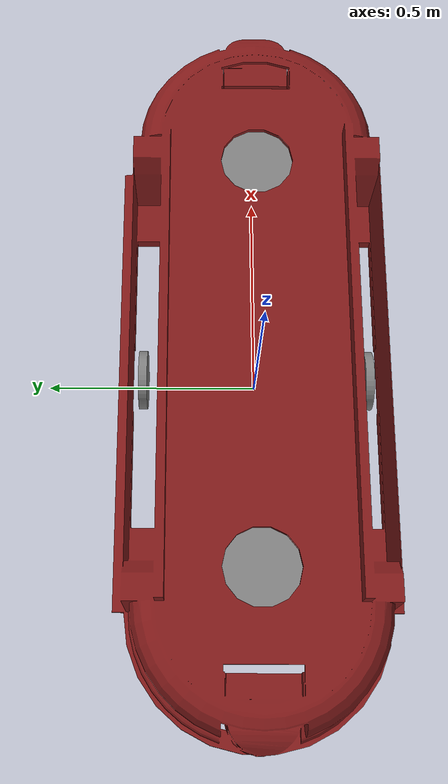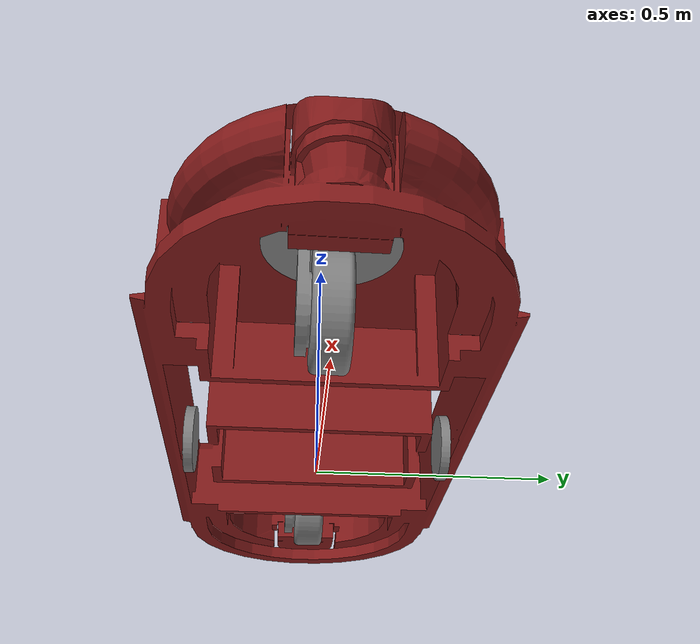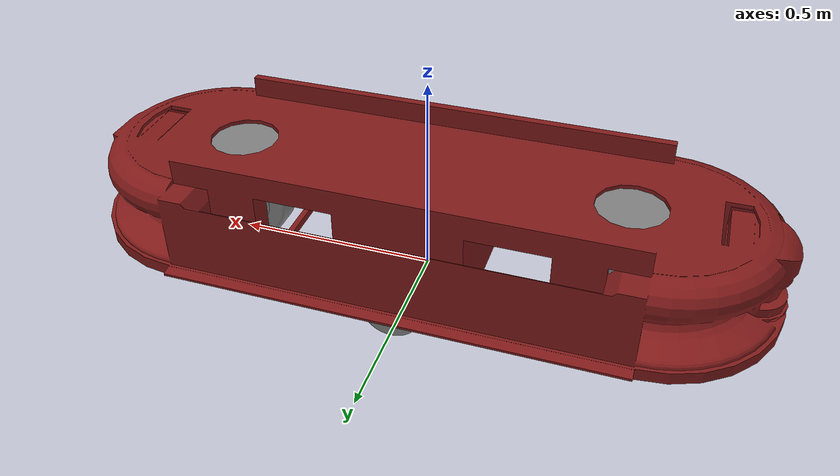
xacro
<?xml version="1.0" ?>
<robot name="$(arg robotName)"  xmlns:xacro="http://ros.org/wiki/xacro">

    <!-- Import all Gazebo-customization elements, including Gazebo colors -->
    <xacro:include filename="$(find dsr_description)/urdf/DSR.gazebo" />

    <!-- Xacro Properties -->
    <xacro:property name="PI" value="3.1415926535897931"/>
    <xacro:property name="wheel_offset_x" value="0.479" />
    <xacro:property name="wheel_offset_y" value="0.0" />
    <xacro:property name="wheel_offset_z" value="0.110" />
    <xacro:property name="wheel_joint_damping" value="1.0" />
    <xacro:property name="wheel_joint_friction" value="1.0" />
    <xacro:property name="wheel_joint_effort_limit" value="1000.0" />
    <xacro:property name="wheel_joint_velocity_limit" value="2000.0" />
    <xacro:property name="wheel_mechanical_reduction" value="1.0" />
    <xacro:property name="motor_wheel_offset_z" value="0.110" />
    <xacro:property name="side_wheel_offset_y" value="0.267" />
    <xacro:property name="side_wheel_offset_z" value="0.070" />
    <xacro:property name="side_wheel_joint_damping" value="1.0" />
    <xacro:property name="side_wheel_joint_friction" value="1.0" />
    <xacro:property name="steer_joint_damping" value="2.0" />
    <xacro:property name="steer_joint_friction" value="1.0" />
    <xacro:property name="steer_joint_effort_limit" value="100.0" />
    <xacro:property name="steer_joint_velocity_limit" value="100.0" />
    <xacro:property name="motor_wheel_mechanical_reduction" value="100.0" />

    <xacro:property name="base_link_mass" value="300.0" />
    <xacro:property name="base_link_x" value="2.0" />
    <xacro:property name="base_link_y" value="1.0" />
    <xacro:property name="base_link_z" value="0.5" />

    <xacro:property name="motor_mass" value="10.0" />
    <xacro:property name="motor_ixx" value="1.0" />
    <xacro:property name="motor_iyy" value="1.0" />
    <xacro:property name="motor_izz" value="1.0" />

    <xacro:property name="wheel_mass" value="10.0" />
    <xacro:property name="wheel_ixx" value="1.0" />
    <xacro:property name="wheel_iyy" value="1.0" />
    <xacro:property name="wheel_izz" value="1.0" />

    <xacro:property name="side_wheel_mass" value="1.250" />
    <xacro:property name="side_wheel_ixx" value="0.0109375" />
    <xacro:property name="side_wheel_iyy" value="0.021125" />
    <xacro:property name="side_wheel_izz" value="0.0109375" />

    <!-- Inertia Macros -->
    <xacro:macro name="Cylinder_Inertia" params ="m r h">
        <inertial>
            <mass value="${m}"/>
            <origin xyz="0 0 0" />
            <inertia ixx="${m*(3*r*r+h*h)/12}" ixy="0.0" ixz="0.0"
                     iyy="${m*(3*r*r+h*h)/12}" iyz= "0.0"
                     izz="${m*r*r/2}"/>
        </inertial>
    </xacro:macro>

    <xacro:macro name="Box_Inertia" params ="m x y z">
        <inertial>
            <mass value="${m}"/>
            <origin xyz="0 0 0" />
            <inertia ixx="${m*(y*y+z*z)/12}" ixy="0.0" ixz="0.0"
                     iyy="${m*(x*x+z*z)/12}" iyz="0.0"
                     izz="${m*(x*x+y*y)/12}"/>
        </inertial>
    </xacro:macro>

    <xacro:macro name="Motor_Inertia" params ="m ixx iyy izz">
        <inertial>
            <mass value="${m}"/>
            <origin xyz="0 0 0" />
            <inertia ixx="${ixx}" ixy="0.0" ixz="0.0"
                     iyy="${iyy}" iyz="0.0"
                     izz="${izz}"/>
        </inertial>
    </xacro:macro>

    <xacro:macro name="Wheel_Inertia" params ="m ixx iyy izz">
        <inertial>
            <mass value="${m}"/>
            <origin xyz="0 0 0" />
            <inertia ixx="${ixx}" ixy="0.0" ixz="0.0"
                     iyy="${iyy}" iyz="0.0"
                     izz="${izz}"/>
        </inertial>
    </xacro:macro>

    <!-- DSR Macro -->
    <xacro:macro name="DSR_BODY" params="prefix">

        <!-- Link: base_footprint -->
        <link name="${prefix}_base_footprint">
            <visual>
                <origin xyz="0 0 0" rpy="0 0 0" />
                <geometry>
                    <box size="0.001 0.001 0.001" />
                </geometry>
            </visual>
        </link>

        <!-- Joint: base_footprint & base_link -->
        <joint name="${prefix}_base_footprint_joint" type="fixed">
            <origin xyz="0 0 -0.005" rpy="0 0 0" />
            <parent link="${prefix}_base_footprint"/>
            <child link="${prefix}_base_link" />
        </joint>

        <!-- Link: base_link -->
        <link name="${prefix}_base_link">
            <xacro:Box_Inertia  m="${base_link_mass}"
                                x="${base_link_x}"
                                y="${base_link_y}"
                                z="${base_link_z}"/>
            <visual>
                <origin xyz="0 0 0" rpy="0 0 0" />
                <geometry>
                    <mesh filename="package://agvs_description/meshes/chassis_agvs.dae"/>
                </geometry>
                <material name="red">
                    <color rgba="0.5 0.1 0.1 1"/>
                </material>
            </visual>
            <collision>
                <origin xyz="0 0 0" rpy="0 0 0 " />
                <geometry>
                    <mesh filename="package://agvs_description/meshes/chassis_agvs.dae"/>
                </geometry>
            </collision>
        </link>

        <!-- Link: back motor link -->
        <link name="${prefix}_back_motor_link">
            <xacro:Box_Inertia  m="${motor_mass}"
                                x="${motor_ixx}"
                                y="${motor_iyy}"
                                z="${motor_izz}"/>
            <visual>
                <origin xyz="0 0 0" rpy="0 0 0" />
                <geometry>
                    <mesh filename="package://agvs_description/meshes/motor_wheel.dae" scale="1.0 1.0 1.0"/>
                </geometry>
                <material name="grey">
                    <color rgba="0.5 0.5 0.5 1"/>
                </material>
            </visual>
            <collision>
                <origin xyz="0 0 0" rpy="0 0 0" />
                <geometry>
                    <mesh filename="package://agvs_description/meshes/motor_wheel.dae" scale="1.0 1.0 1.0"/>
                </geometry>
            </collision>
        </link>

        <!-- Joint: base_link & back motor -->
        <joint name="${prefix}_joint_back_motor" type="continuous">
            <parent link="${prefix}_base_link"/>
            <child link="${prefix}_back_motor_link"/>
            <origin xyz="-${wheel_offset_x} ${wheel_offset_y} ${motor_wheel_offset_z}" rpy="0 0 0" />
            <axis xyz="0 0 1" rpy="0 0 0" />
            <limit effort="${steer_joint_effort_limit}" velocity="${steer_joint_velocity_limit}" lower="-1.5708" upper="1.5708"/>
            <joint_properties damping="${steer_joint_damping}" friction="{steer_joint_friction}"/>
        </joint>

        <!-- Transmission: back motor -->
        <transmission name="${prefix}_joint_bmw_trans">
            <type>transmission_interface/SimpleTransmission</type>
            <joint name="${prefix}_joint_back_motor">
                <hardwareInterface>hardware_interface/EffortJointInterface</hardwareInterface>
            </joint>
            <actuator name="${prefix}_joint_bmw_motor">
                <hardwareInterface>hardware_interface/EffortJointInterface</hardwareInterface>
                <mechanicalReduction>${motor_wheel_mechanical_reduction}</mechanicalReduction>
            </actuator>
        </transmission>

        <!-- Link: back wheel link -->
        <link name="${prefix}_back_wheel_link">
            <xacro:Wheel_Inertia    m="${wheel_mass}"
                                    ixx="${wheel_ixx}"
                                    iyy="${wheel_iyy}"
                                    izz="${wheel_izz}"/>
            <visual>
                <origin xyz="0 0 0" rpy="0 0 0" />
                <geometry>
                    <mesh filename="package://agvs_description/meshes/agvs_wheel.dae" scale="1.0 1.0 1.0"/>
                </geometry>
                <material name="grey">
                    <color rgba="0.5 0.5 0.5 1"/>
                </material>
            </visual>
            <collision>
                <origin xyz="0 0 0" rpy="0 0 0" />
                <geometry>
                    <mesh filename="package://agvs_description/meshes/agvs_wheel.dae" scale="1.0 1.0 1.0"/>
                </geometry>
            </collision>
        </link>

        <!-- Joint: back motor & back wheel link -->
        <joint name="${prefix}_joint_back_wheel" type="continuous">
            <parent link="${prefix}_back_motor_link"/>
            <child link="${prefix}_back_wheel_link"/>
            <origin xyz="0 0 0" rpy="0 0 0" />
            <axis xyz="0 1 0" rpy="0 0 0" />
            <limit effort="${wheel_joint_effort_limit}" velocity="${wheel_joint_velocity_limit}"/>
            <joint_properties damping="${wheel_joint_damping}" friction="{wheel_joint_friction}"/>
        </joint>

        <!-- Transmission: back wheel -->
        <transmission name="${prefix}_joint_bw_trans">
            <type>transmission_interface/SimpleTransmission</type>
            <joint name="${prefix}_joint_back_wheel">
                <hardwareInterface>hardware_interface/VelocityJointInterface</hardwareInterface>
            </joint>
            <actuator name="${prefix}_joint_bw_motor">
                <hardwareInterface>hardware_interface/VelocityJointInterface</hardwareInterface>
                <mechanicalReduction>${wheel_mechanical_reduction}</mechanicalReduction>
            </actuator>
        </transmission>

        <!-- Link: front motor link -->
        <link name="${prefix}_front_motor_link">
            <xacro:Box_Inertia  m="${motor_mass}"
                                x="${motor_ixx}"
                                y="${motor_iyy}"
                                z="${motor_izz}"/>
            <visual>
                <origin xyz="0 0 0" rpy="0 0 0" />
                <geometry>
                    <mesh filename="package://agvs_description/meshes/motor_wheel.dae" scale="1.0 1.0 1.0"/>
                </geometry>
                <material name="grey">
                    <color rgba="0.5 0.5 0.5 1"/>
                </material>
            </visual>
            <collision>
                <origin xyz="0 0 0" rpy="0 0 0" />
                <geometry>
                    <mesh filename="package://agvs_description/meshes/motor_wheel.dae" scale="1.0 1.0 1.0"/>
                </geometry>
            </collision>
        </link>

        <!-- Joint: base_link & front motor -->
        <joint name="${prefix}_joint_front_motor" type="continuous">
            <parent link="${prefix}_base_link"/>
            <child link="${prefix}_front_motor_link"/>
            <origin xyz="${wheel_offset_x} ${wheel_offset_y} ${motor_wheel_offset_z}" rpy="0 0 0" />
            <axis xyz="0 0 1" rpy="0 0 0" />
            <limit effort="${steer_joint_effort_limit}" velocity="${steer_joint_velocity_limit}" lower="-1.5708" upper="1.5708"/>
            <joint_properties damping="${steer_joint_damping}" friction="{steer_joint_friction}"/>
        </joint>

        <!-- Transmission: front motor -->
        <transmission name="${prefix}_joint_fmw_trans">
            <type>transmission_interface/SimpleTransmission</type>
            <joint name="${prefix}_joint_front_motor">
                <hardwareInterface>hardware_interface/EffortJointInterface</hardwareInterface>
            </joint>
            <actuator name="${prefix}_joint_fmw_motor">
                <hardwareInterface>hardware_interface/EffortJointInterface</hardwareInterface>
                <mechanicalReduction>${motor_wheel_mechanical_reduction}</mechanicalReduction>
            </actuator>
        </transmission>

        <!-- Link: front wheel link -->
        <link name="${prefix}_front_wheel_link">
            <xacro:Wheel_Inertia    m="${wheel_mass}"
                                    ixx="${wheel_ixx}"
                                    iyy="${wheel_iyy}"
                                    izz="${wheel_izz}"/>
            <visual>
                <origin xyz="0 0 0" rpy="0 0 0" />
                <geometry>
                    <mesh filename="package://agvs_description/meshes/agvs_wheel.dae" scale="1.0 1.0 1.0"/>
                </geometry>
                <material name="grey">
                    <color rgba="0.5 0.5 0.5 1"/>
                </material>
            </visual>
            <collision>
                <origin xyz="0 0 0" rpy="0 0 0" />
                <geometry>
                    <mesh filename="package://agvs_description/meshes/agvs_wheel.dae" scale="1.0 1.0 1.0"/>
                </geometry>
            </collision>
        </link>

        <!-- Joint: front motor & front wheel link -->
        <joint name="${prefix}_joint_front_wheel" type="continuous">
            <parent link="${prefix}_front_motor_link"/>
            <child link="${prefix}_front_wheel_link"/>
            <origin xyz="0 0 0" rpy="0 0 0" />
            <axis xyz="0 1 0" rpy="0 0 0" />
            <limit effort="${wheel_joint_effort_limit}" velocity="${wheel_joint_velocity_limit}"/>
            <joint_properties damping="${wheel_joint_damping}" friction="{wheel_joint_friction}"/>
        </joint>

        <!-- Transmission: back wheel -->
        <transmission name="${prefix}_joint_fw_trans">
            <type>transmission_interface/SimpleTransmission</type>
            <joint name="${prefix}_joint_front_wheel">
                <hardwareInterface>hardware_interface/VelocityJointInterface</hardwareInterface>
            </joint>
            <actuator name="${prefix}_joint_fw_motor">
                <hardwareInterface>hardware_interface/VelocityJointInterface</hardwareInterface>
                <mechanicalReduction>${wheel_mechanical_reduction}</mechanicalReduction>
            </actuator>
        </transmission>

        <!-- Link: left wheel link -->
        <link name="${prefix}_left_wheel_link">
            <xacro:Wheel_Inertia    m="${side_wheel_mass}"
                                    ixx="${side_wheel_ixx}"
                                    iyy="${side_wheel_iyy}"
                                    izz="${side_wheel_izz}"/>
            <visual>
                <origin xyz="0 0 0" rpy="0 0 0" />
                <geometry>
                    <mesh filename="package://agvs_description/meshes/side_wheel_agvs.dae" scale="1.0 1.0 1.0"/>
                </geometry>
                <material name="grey">
                    <color rgba="0.5 0.5 0.5 1"/>
                </material>
            </visual>

            <collision>
                <origin xyz="0 0 0" rpy="0 0 0" />
                <geometry>
                    <mesh filename="package://agvs_description/meshes/side_wheel_agvs.dae" scale="1.0 1.0 1.0"/>
                </geometry>
            </collision>
        </link>

        <!-- Joint: base link & left wheel link -->
        <joint name="${prefix}_joint_left_wheel" type="continuous">
            <parent link="${prefix}_base_link"/>
            <child link="${prefix}_left_wheel_link"/>
            <origin xyz="0 ${side_wheel_offset_y} ${side_wheel_offset_z}" rpy="0 0 0" />
            <axis xyz="0 1 0" rpy="0 0 0" />
            <limit effort="${wheel_joint_effort_limit}" velocity="${wheel_joint_velocity_limit}"/>
            <joint_properties damping="${side_wheel_joint_damping}" friction="{side_wheel_joint_friction}"/>
        </joint>

        <!-- Transmission: left wheel -->
        <transmission name="${prefix}_joint_lw_trans">
            <type>transmission_interface/SimpleTransmission</type>
            <joint name="${prefix}_joint_left_wheel">
                <hardwareInterface>hardware_interface/EffortJointInterface</hardwareInterface>
            </joint>
            <actuator name="${prefix}_joint_lw_motor">
                <hardwareInterface>hardware_interface/EffortJointInterface</hardwareInterface>
                <mechanicalReduction>${wheel_mechanical_reduction}</mechanicalReduction>
            </actuator>
        </transmission>

        <!-- Link: right wheel link -->
        <link name="${prefix}_right_wheel_link">
            <xacro:Wheel_Inertia    m="${side_wheel_mass}"
                                    ixx="${side_wheel_ixx}"
                                    iyy="${side_wheel_iyy}"
                                    izz="${side_wheel_izz}"/>
            <visual>
                <origin xyz="0 0 0" rpy="0 0 0" />
                <geometry>
                    <mesh filename="package://agvs_description/meshes/side_wheel_agvs.dae" scale="1.0 1.0 1.0"/>
                </geometry>
                <material name="grey">
                    <color rgba="0.5 0.5 0.5 1"/>
                </material>
            </visual>

            <collision>
                <origin xyz="0 0 0" rpy="0 0 0" />
                <geometry>
                    <mesh filename="package://agvs_description/meshes/side_wheel_agvs.dae" scale="1.0 1.0 1.0"/>
                </geometry>
            </collision>
        </link>

        <!-- Joint: base link & right wheel link -->
        <joint name="${prefix}_joint_right_wheel" type="continuous">
            <parent link="${prefix}_base_link"/>
            <child link="${prefix}_right_wheel_link"/>
            <origin xyz="0 -${side_wheel_offset_y} ${side_wheel_offset_z}" rpy="0 0 0" />
            <axis xyz="0 1 0" rpy="0 0 0" />
            <limit effort="${wheel_joint_effort_limit}" velocity="${wheel_joint_velocity_limit}"/>
            <joint_properties damping="${side_wheel_joint_damping}" friction="{side_wheel_joint_friction}"/>
        </joint>

        <!-- Transmission: right wheel -->
        <transmission name="${prefix}_joint_rw_trans">
            <type>transmission_interface/SimpleTransmission</type>
            <joint name="${prefix}_joint_right_wheel">
                <hardwareInterface>hardware_interface/EffortJointInterface</hardwareInterface>
            </joint>
            <actuator name="${prefix}_joint_rw_motor">
                <hardwareInterface>hardware_interface/EffortJointInterface</hardwareInterface>
                <mechanicalReduction>${wheel_mechanical_reduction}</mechanicalReduction>
            </actuator>
        </transmission>

    </xacro:macro>

    <!-- Create DSR Body With Prefix Name -->
    <xacro:DSR_BODY prefix="DSR"/>

</robot>
